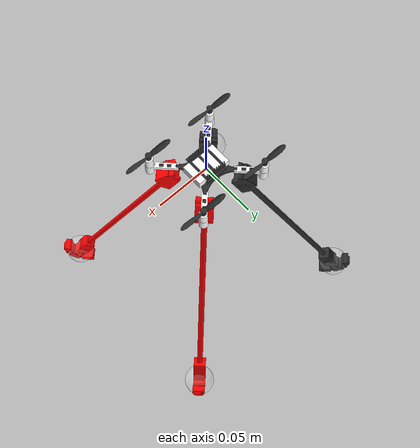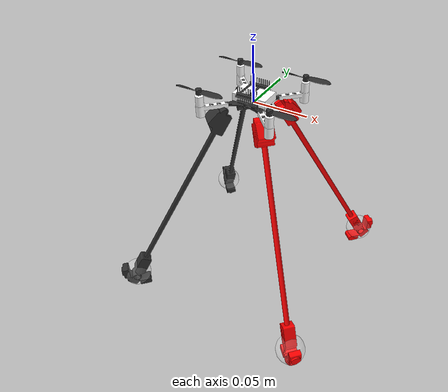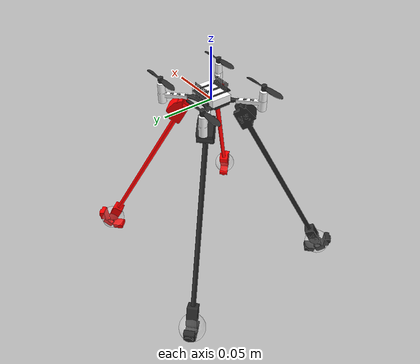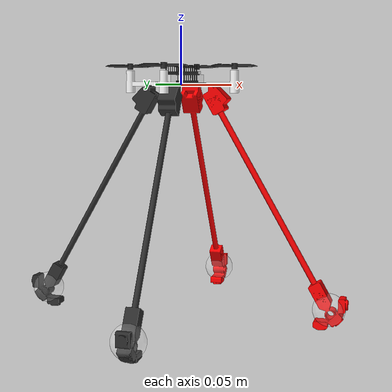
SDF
<?xml version='1.0'?>
<sdf version='1.7'>
  <model name='A30_L200'>

    <include>
      <uri>model://SAR_Base</uri>
    </include>

    <link name='Leg_1'>
      <pose>18.5e-3 -18.5e-3 -4.0e-3 0 1.047 -0.785</pose>
      <inertial>
        <mass>2.47E-2</mass>
        <pose>1.35E-1 0 -1.20E-3 0 0 0 </pose>
        <inertia>
          <ixx>1.61E-6</ixx>
          <ixy>0</ixy>
          <ixz>0</ixz>
          <iyy>2.09E-4</iyy>
          <iyz>0</iyz>
          <izz>2.08E-4</izz>
        </inertia>
      </inertial>
      <gravity>1</gravity>
      <self_collide>1</self_collide>
      <visual name='Leg_Visual'>
        <pose>0 0 0 0 0 0</pose>
        <geometry>
          <mesh>
            <uri>model://Leg_Assemblies/meshes/Leg_Assembly_30_deg--200mm.STL</uri>
            <scale>1 1 1</scale>
          </mesh>
        </geometry>
          <material>
              <!--Red-->
              <ambient>1.0 0.0 0.0 1</ambient>
              <diffuse>1.0 0.0 0.0 1</diffuse>
              <specular>0.1 0.1 0.1 1.0</specular>
          <lighting>1</lighting>
          </material>
      </visual>
      <collision name="Leg_Collision_1">
        <pose>104.5e-3 0 -1.9e-3 0 1.57 0</pose>
        <geometry>
          <cylinder>
            <length>109.0e-3</length>
            <radius>2.5e-3</radius>
          </cylinder>
        </geometry>
      </collision>
      <self_collide>1</self_collide>
    </link>
    <link name='Foot_1'>
      <pose>91.6e-3 -91.6e-3 -186.9e-3 0 2.618 -0.785</pose>
      <inertial>
        <mass>0.01E-6</mass>
        <pose>0 0 0 0 0 0 </pose>
      </inertial>
      <gravity>1</gravity>
      <self_collide>1</self_collide>
      <visual name='Collision_Radius_Foot_1'>
        <pose>0 0 0 0 0 0</pose>
        <geometry>
          <sphere>
            <radius>13.9e-3</radius>
          </sphere>
        </geometry>
        <material>
        <ambient>1 1 1 0.2 </ambient>
        <diffuse>1 1 1 0.2</diffuse>
        <lighting>1</lighting>
        </material>
      </visual>

      <collision name="Foot_Collision_1">
        <pose>0 0 0 0 0 0</pose>
        <geometry>
          <sphere>
            <radius>13.9e-3</radius>
          </sphere>
        </geometry>
      </collision>
      <sensor name='contact_sensor' type='contact'>
          <contact>
              <collision>Foot_Collision_1</collision>
              <topic>/SAR_Internal/Leg_Connections_1</topic>
          </contact>
          <always_on>1</always_on>
          <update_rate>100</update_rate>
      </sensor>
      <self_collide>1</self_collide>
    </link>

    <link name='Leg_2'>
      <pose>-18.5e-3 -18.5e-3 -4.0e-3 0 1.047 -2.35</pose>
      <inertial>
        <mass>2.47E-2</mass>
        <pose>1.35E-1 0 -1.20E-3 0 0 0 </pose>
        <inertia>
          <ixx>1.61E-6</ixx>
          <ixy>0</ixy>
          <ixz>0</ixz>
          <iyy>2.09E-4</iyy>
          <iyz>0</iyz>
          <izz>2.08E-4</izz>
        </inertia>
      </inertial>
      <gravity>1</gravity>
      <self_collide>1</self_collide>
      <visual name='Leg_Visual'>
        <pose>0 0 0 0 0 0</pose>
        <geometry>
          <mesh>
            <uri>model://Leg_Assemblies/meshes/Leg_Assembly_30_deg--200mm.STL</uri>
            <scale>1 1 1</scale>
          </mesh>
        </geometry>
          <material>
              <!--DarkGrey-->
              <ambient>0.175 0.175 0.175 1</ambient>
              <diffuse>0.175 0.175 0.175 1</diffuse>
              <specular>0.175 0.175 0.175 1.00</specular>
          <lighting>1</lighting>
          </material>
      </visual>

      <collision name="Leg_Collision_2">
        <pose>104.5e-3 0 -1.9e-3 0 1.57 0</pose>
        <geometry>
          <cylinder>
            <length>109.0e-3</length>
            <radius>2.5e-3</radius>
          </cylinder>
        </geometry>
      </collision>

      <self_collide>1</self_collide>
    </link>
    <link name='Foot_2'>
      <pose>-91.6e-3 -91.6e-3 -186.9e-3 0 2.618 -2.35</pose>
      <inertial>
        <mass>0.01E-6</mass>
        <pose>0 0 0 0 0 0 </pose>
      </inertial>
      <gravity>1</gravity>
      <self_collide>1</self_collide>
      <visual name='Collision_Radius_Foot_2'>
        <pose>0 0 0 0 0 0</pose>
        <geometry>
          <sphere>
            <radius>13.9e-3</radius>
          </sphere>
        </geometry>
        <material>
        <ambient>1 1 1 0.2</ambient>
        <diffuse>1 1 1 0.2</diffuse>
        <lighting>1</lighting>
        </material>
      </visual>

      <collision name="Foot_Collision_2">
        <pose>0 0 0 0 0 0</pose>
        <geometry>
          <sphere>
            <radius>13.9e-3</radius>
          </sphere>
        </geometry>
      </collision>
      <sensor name='contact_sensor' type='contact'>
          <contact>
              <collision>Foot_Collision_2</collision>
              <topic>/SAR_Internal/Leg_Connections_2</topic>
          </contact>
          <always_on>1</always_on>
          <update_rate>100</update_rate>
      </sensor>
      <self_collide>1</self_collide>
    </link>

    <link name='Leg_3'>
      <pose>-18.5e-3 18.5e-3 -4.0e-3 0 1.047 2.35</pose>
      <inertial>
        <mass>2.47E-2</mass>
        <pose>1.35E-1 0 -1.20E-3 0 0 0 </pose>
        <inertia>
          <ixx>1.61E-6</ixx>
          <ixy>0</ixy>
          <ixz>0</ixz>
          <iyy>2.09E-4</iyy>
          <iyz>0</iyz>
          <izz>2.08E-4</izz>
        </inertia>
      </inertial>
      <gravity>1</gravity>
      <self_collide>1</self_collide>
      <visual name='Leg_Visual'>
        <pose>0 0 0 0 0 0</pose>
        <geometry>
          <mesh>
            <uri>model://Leg_Assemblies/meshes/Leg_Assembly_30_deg--200mm.STL</uri>
            <scale>1 1 1</scale>
          </mesh>
        </geometry>
          <material>
              <!--DarkGrey-->
              <ambient>0.175 0.175 0.175 1</ambient>
              <diffuse>0.175 0.175 0.175 1</diffuse>
              <specular>0.175 0.175 0.175 1.00</specular>
          <lighting>1</lighting>
          </material>
      </visual>

      <collision name="Leg_Collision_3">
        <pose>104.5e-3 0 -1.9e-3 0 1.57 0</pose>
        <geometry>
          <cylinder>
            <length>109.0e-3</length>
            <radius>2.5e-3</radius>
          </cylinder>
        </geometry>
      </collision>

      <self_collide>1</self_collide>
    </link>
    <link name='Foot_3'>
      <pose>-91.6e-3 91.6e-3 -186.9e-3 0 2.618 2.35</pose>
      <inertial>
        <mass>0.01E-6</mass>
        <pose>0 0 0 0 0 0 </pose>
      </inertial>
      <gravity>1</gravity>
      <self_collide>1</self_collide>
      <visual name='Collision_Radius_Foot_3'>
        <pose>0 0 0 0 0 0</pose>
        <geometry>
          <sphere>
            <radius>13.9e-3</radius>
          </sphere>
        </geometry>
        <material>
        <ambient>1 1 1 0.2</ambient>
        <diffuse>1 1 1 0.2</diffuse>
        <lighting>1</lighting>
        </material>
      </visual>

      <collision name="Foot_Collision_3">
        <pose>0 0 0 0 0 0</pose>
        <geometry>
          <sphere>
            <radius>13.9e-3</radius>
          </sphere>
        </geometry>
      </collision>
      <sensor name='contact_sensor' type='contact'>
          <contact>
              <collision>Foot_Collision_3</collision>
              <topic>/SAR_Internal/Leg_Connections_3</topic>
          </contact>
          <always_on>1</always_on>
          <update_rate>100</update_rate>
      </sensor>
      <self_collide>1</self_collide>
    </link>

    <link name='Leg_4'>
      <pose>18.5e-3 18.5e-3 -4.0e-3 0 1.047 0.785</pose>
      <inertial>
        <mass>2.47E-2</mass>
        <pose>1.35E-1 0 -1.20E-3 0 0 0 </pose>
        <inertia>
          <ixx>1.61E-6</ixx>
          <ixy>0</ixy>
          <ixz>0</ixz>
          <iyy>2.09E-4</iyy>
          <iyz>0</iyz>
          <izz>2.08E-4</izz>
        </inertia>
      </inertial>
      <gravity>1</gravity>
      <self_collide>1</self_collide>
      <visual name='Leg_Visual'>
        <pose>0 0 0 0 0 0</pose>
        <geometry>
          <mesh>
            <uri>model://Leg_Assemblies/meshes/Leg_Assembly_30_deg--200mm.STL</uri>
            <scale>1 1 1</scale>
          </mesh>
        </geometry>
          <material>
              <!--Red-->
              <ambient>1.0 0.0 0.0 1</ambient>
              <diffuse>1.0 0.0 0.0 1</diffuse>
              <specular>0.1 0.1 0.1 1.0</specular>
          <lighting>1</lighting>
          </material>
      </visual>

      <collision name="Leg_Collision_4">
        <pose>104.5e-3 0 -1.9e-3 0 1.57 0</pose>
        <geometry>
          <cylinder>
            <length>109.0e-3</length>
            <radius>2.5e-3</radius>
          </cylinder>
        </geometry>
      </collision>

      <self_collide>1</self_collide>
    </link>
    <link name='Foot_4'>
      <pose>91.6e-3 91.6e-3 -186.9e-3 0 2.618 0.785</pose>
      <inertial>
        <mass>0.01E-6</mass>
        <pose>0 0 0 0 0 0 </pose>
      </inertial>
      <gravity>1</gravity>
      <self_collide>1</self_collide>
      <visual name='Collision_Radius_Foot_4'>
        <pose>0 0 0 0 0 0</pose>
        <geometry>
          <sphere>
            <radius>13.9e-3</radius>
          </sphere>
        </geometry>
        <material>
        <ambient>1 1 1 0.2</ambient>
        <diffuse>1 1 1 0.2</diffuse>
        <lighting>1</lighting>
        </material>
      </visual>

      <collision name="Foot_Collision_4">
        <pose>0 0 0 0 0 0</pose>
        <geometry>
          <sphere>
            <radius>13.9e-3</radius>
          </sphere>
        </geometry>
      </collision>
      <sensor name='contact_sensor' type='contact'>
          <contact>
              <collision>Foot_Collision_4</collision>
              <topic>/SAR_Internal/Leg_Connections_4</topic>
          </contact>
          <always_on>1</always_on>
          <update_rate>100</update_rate>
      </sensor>
      <self_collide>1</self_collide>
    </link>

    <joint name='Hinge_1_Joint' type='universal'>
      <parent>SAR_Base::SAR_Body</parent>
      <child>Leg_1</child>
      <pose>0 0 0 0 0.5236 0</pose>
      <axis>
        <xyz>0 1 0</xyz>
        <limit>
          <lower>0.0</lower>
          <upper>1.309</upper>
        </limit>
        <dynamics>
          <spring_stiffness>5.0</spring_stiffness>
          <damping>0.3</damping>
        </dynamics>
      </axis>
      <axis2>
        <xyz>0 0 1</xyz>
        <limit>
          <lower>-0.349</lower>
          <upper>0.349</upper>
        </limit>
        <dynamics>
          <spring_stiffness>5.0</spring_stiffness>
          <damping>0.7</damping>
        </dynamics>
      </axis2>
    </joint>

    <joint name='Ball_1_Joint' type='ball'>
      <parent>Leg_1</parent>
      <child>Foot_1</child>
      <pose>0 0 0 0 0 0</pose>
    </joint>

    <joint name='Hinge_2_Joint' type='universal'>
      <parent>SAR_Base::SAR_Body</parent>
      <child>Leg_2</child>
      <pose>0 0 0 0 0.5236 0</pose>
      <axis>
        <xyz>0 1 0</xyz>
        <limit>
          <lower>0.0</lower>
          <upper>1.309</upper>
        </limit>
        <dynamics>
          <spring_stiffness>5.0</spring_stiffness>
          <damping>0.3</damping>
        </dynamics>
      </axis>
      <axis2>
        <xyz>0 0 1</xyz>
        <limit>
          <lower>-0.349</lower>
          <upper>0.349</upper>
        </limit>
        <dynamics>
          <spring_stiffness>5.0</spring_stiffness>
          <damping>0.7</damping>
        </dynamics>
      </axis2>
    </joint>
    <joint name='Ball_2_Joint' type='ball'>
      <parent>Leg_2</parent>
      <child>Foot_2</child>
      <pose>0 0 0 0 0 0</pose>
    </joint>

    <joint name='Hinge_3_Joint' type='universal'>
      <parent>SAR_Base::SAR_Body</parent>
      <child>Leg_3</child>
      <pose>0 0 0 0 0.5236 0</pose>
      <axis>
        <xyz>0 1 0</xyz>
        <limit>
          <lower>0.0</lower>
          <upper>1.309</upper>
        </limit>
        <dynamics>
          <spring_stiffness>5.0</spring_stiffness>
          <damping>0.3</damping>
        </dynamics>
      </axis>
      <axis2>
        <xyz>0 0 1</xyz>
        <limit>
          <lower>-0.349</lower>
          <upper>0.349</upper>
        </limit>
        <dynamics>
          <spring_stiffness>5.0</spring_stiffness>
          <damping>0.7</damping>
        </dynamics>
      </axis2>
    </joint>
    <joint name='Ball_3_Joint' type='ball'>
      <parent>Leg_3</parent>
      <child>Foot_3</child>
      <pose>0 0 0 0 0 0</pose>
    </joint>

    <joint name='Hinge_4_Joint' type='universal'>
      <parent>SAR_Base::SAR_Body</parent>
      <child>Leg_4</child>
      <pose>0 0 0 0 0.5236 0</pose>
      <axis>
        <xyz>0 1 0</xyz>
        <limit>
          <lower>0.0</lower>
          <upper>1.309</upper>
        </limit>
        <dynamics>
          <spring_stiffness>5.0</spring_stiffness>
          <damping>0.3</damping>
        </dynamics>
      </axis>
      <axis2>
        <xyz>0 0 1</xyz>
        <limit>
          <lower>-0.349</lower>
          <upper>0.349</upper>
        </limit>
        <dynamics>
          <spring_stiffness>5.0</spring_stiffness>
          <damping>0.7</damping>
        </dynamics>
      </axis2>
    </joint>

    <joint name='Ball_4_Joint' type='ball'>
      <parent>Leg_4</parent>
      <child>Foot_4</child>
      <pose>0 0 0 0 0 0</pose>
    </joint>

    <plugin
        filename="/home/dlee/ros2_ws/install/sar_gazebo/lib/libSticky_Leg_Plugin.so"
        name="gz::sim::systems::Sticky_Leg_Plugin">
      <LegNumber>1</LegNumber>
      <LinkName>Foot_1</LinkName>
      <CollisionName>Foot_Collision_1</CollisionName>
      <JointName>Foot_1_Contact_Joint</JointName>

      <child_model>A30_L200</child_model>
      <child_link>Foot_1</child_link>
    </plugin>

    <plugin
        filename="/home/dlee/ros2_ws/install/sar_gazebo/lib/libSticky_Leg_Plugin.so"
        name="gz::sim::systems::Sticky_Leg_Plugin">
      <LegNumber>2</LegNumber>
      <LinkName>Foot_2</LinkName>
      <CollisionName>Foot_Collision_2</CollisionName>
      <JointName>Leg_2_Contact_Joint</JointName>

      <child_model>A30_L200</child_model>
      <child_link>Foot_2</child_link>
    </plugin>

    <plugin
        filename="/home/dlee/ros2_ws/install/sar_gazebo/lib/libSticky_Leg_Plugin.so"
        name="gz::sim::systems::Sticky_Leg_Plugin">
      <LegNumber>3</LegNumber>
      <LinkName>Foot_3</LinkName>
      <CollisionName>Foot_Collision_3</CollisionName>
      <JointName>Leg_3_Contact_Joint</JointName>

      <child_model>A30_L200</child_model>
      <child_link>Foot_3</child_link>
    </plugin>
    <plugin
        filename="/home/dlee/ros2_ws/install/sar_gazebo/lib/libSticky_Leg_Plugin.so"
        name="gz::sim::systems::Sticky_Leg_Plugin">
      <LegNumber>4</LegNumber>
      <LinkName>Foot_4</LinkName>
      <CollisionName>Foot_Collision_4</CollisionName>
      <JointName>Leg_4_Contact_Joint</JointName>

      <child_model>A30_L200</child_model>
      <child_link>Foot_4</child_link>
    </plugin>

    <static>0</static>
    <allow_auto_disable>1</allow_auto_disable>
  </model>
</sdf>

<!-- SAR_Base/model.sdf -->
<sdf version='1.7'>
  <model name='SAR_Base' canonical_link='SAR_Body'>
    <pose>0 0 0 0 0 0</pose>   <!--the pose is relative to the world by default-->

    <!--SAR_Body-->
    <link name='SAR_Body'>
        <pose>0 0 0 0 0 0</pose>
        <inertial> <!--inertial properties of the link mass, inertia matix-->
            <mass>37.0e-3</mass>
            <inertia>
                <ixx>17.20e-6</ixx>
                <ixy>0</ixy>
                <ixz>0</ixz>
                <iyy>17.70e-6</iyy>
                <iyz>0</iyz>
                <izz>34.20e-6</izz>
            </inertia>
            <pose>0 0 0 0 0 0</pose>
        </inertial>
        <pose>0 0 0 0 0 0</pose>
        <gravity>1</gravity>
        <self_collide>0</self_collide>
        <kinematic>0</kinematic>
        <enable_wind>0</enable_wind>

        <sensor name="imu" type="imu">
        <always_on>1</always_on>
        <update_rate>100</update_rate>
        <visualize>true</visualize>
        <topic>imu</topic>
        <enable_metrics>true</enable_metrics>
        </sensor>

        <visual name='Crazyflie_Base_Assembly'>
            <pose>0 0 0 0 0 0</pose>
            <geometry>
            <mesh>
                <uri>model://SAR_Base/meshes/Crazyflie_Base_Body.STL</uri>
                <scale>1 1 1</scale>
            </mesh>
            </geometry>
            <material>
                <!--DarkGrey-->
                <ambient>0.175 0.175 0.175 1</ambient>
                <diffuse>0.175 0.175 0.175 1</diffuse>
                <specular>0.175 0.175 0.175 1.00</specular>
            <lighting>1</lighting>
            </material>
        </visual>

        <visual name='Crazyflie_Motor_Arms'>
            <pose>0 0 0 0 0 0</pose>
            <geometry>
            <mesh>
                <uri>model://SAR_Base/meshes/Crazyflie_Motor_Arms.STL</uri>
                <scale>1 1 1</scale>
            </mesh>
            </geometry>
            <material>
                <!--White-->
                <ambient>1 1 1 1</ambient>
                <diffuse>1 1 1 1</diffuse>
                <specular>0.1 0.1 0.1 0.128</specular>
            <lighting>1</lighting>
            </material>
        </visual>

        <collision name='Body_Collision_Prop_1'>
            <pose>33.0e-3 -33.0e-3 9.25e-3 0 0 0</pose>
            <geometry>
            <cylinder>
                <length>18.5e-3</length>
                <radius>23.0e-3</radius>
            </cylinder>
            </geometry>
        </collision>

        <collision name='Body_Collision_Prop_2'>
            <pose>-33.0e-3 -33.0e-3 9.25e-3 0 0 0</pose>
            <geometry>
            <cylinder>
                <length>18.5e-3</length>
                <radius>23.0e-3</radius>
            </cylinder>
            </geometry>
        </collision>

        <collision name='Body_Collision_Prop_3'>
            <pose>-33.0e-3 33.0e-3 9.25e-3 0 0 0</pose>
            <geometry>
            <cylinder>
                <length>18.5e-3</length>
                <radius>23.0e-3</radius>
            </cylinder>
            </geometry>
        </collision>

        <collision name='Body_Collision_Prop_4'>
            <pose>33.0e-3 33.0e-3 9.25e-3 0 0 0</pose>
            <geometry>
            <cylinder>
                <length>18.5e-3</length>
                <radius>23.0e-3</radius>
            </cylinder>
            </geometry>
        </collision>

    </link>

    <link name='Prop_1'>
        <inertial>
            <mass>1e-6</mass>
            <inertia>
                <ixx>1e-6</ixx>
                <ixy>0</ixy>
                <ixz>0</ixz>
                <iyy>1e-6</iyy>
                <iyz>0</iyz>
                <izz>1e-6</izz>
            </inertia>
            <pose>0 0 0 0 0 0</pose>
        </inertial>
        <pose>33.0e-3 -33.0e-3 16.0e-3 0 0 0</pose>
        <gravity>1</gravity>
        <self_collide>0</self_collide>
        <visual name='Crazyflie_Propeller_1'>
            <pose>0 0 0 0 0 0</pose>
            <geometry>
                <mesh>
                    <uri>model://SAR_Base/meshes/Crazyflie_Propeller.STL</uri>
                    <scale>1 1 1</scale>
                </mesh>
            </geometry>
            <material>
                <!--DarkGrey-->
                <ambient>0.175 0.175 0.175 1</ambient>
                <diffuse>0.175 0.175 0.175 1</diffuse>
                <specular>0.175 0.175 0.175 1.00</specular>
            <lighting>1</lighting>
            </material>
        </visual>
    </link>

    <link name='Prop_2'>
        <inertial>
            <mass>1e-6</mass>
            <inertia>
                <ixx>1e-6</ixx>
                <ixy>0</ixy>
                <ixz>0</ixz>
                <iyy>1e-6</iyy>
                <iyz>0</iyz>
                <izz>1e-6</izz>
            </inertia>
            <pose>0 0 0 0 0 0</pose>
        </inertial>
        <pose>-33.0e-3 -33.0e-3 16.0e-3 0 0 0</pose>
        <gravity>1</gravity>
        <self_collide>0</self_collide>
        <visual name='Crazyflie_Propeller_2'>
            <pose>0 0 0 0 0 0</pose>
            <geometry>
                <mesh>
                    <uri>model://SAR_Base/meshes/Crazyflie_Propeller.STL</uri>
                    <scale>1 1 1</scale>
                </mesh>
            </geometry>
            <material>
                <!--DarkGrey-->
                <ambient>0.175 0.175 0.175 1</ambient>
                <diffuse>0.175 0.175 0.175 1</diffuse>
                <specular>0.175 0.175 0.175 1.00</specular>
            <lighting>1</lighting>
            </material>
        </visual>
    </link>

    <link name='Prop_3'>
    <inertial>
        <mass>1e-6</mass>
        <inertia>
            <ixx>1e-6</ixx>
            <ixy>0</ixy>
            <ixz>0</ixz>
            <iyy>1e-6</iyy>
            <iyz>0</iyz>
            <izz>1e-6</izz>
        </inertia>
        <pose>0 0 0 0 0 0</pose>
    </inertial>
    <pose>-33.0e-3 33.0e-3 16.0e-3 0 0 0</pose>
    <gravity>1</gravity>
    <self_collide>0</self_collide>
        <visual name='Crazyflie_Propeller_3'>
            <pose>0 0 0 0 0 0</pose>
            <geometry>
            <mesh>
                <uri>model://SAR_Base/meshes/Crazyflie_Propeller.STL</uri>
                <scale>1 1 1</scale>
            </mesh>
            </geometry>
                <material>
                    <!--DarkGrey-->
                    <ambient>0.175 0.175 0.175 1</ambient>
                    <diffuse>0.175 0.175 0.175 1</diffuse>
                    <specular>0.175 0.175 0.175 1.00</specular>
                <lighting>1</lighting>
                </material>
        </visual>
    </link>

    <link name='Prop_4'>
    <inertial>
        <mass>1e-6</mass>
        <inertia>
            <ixx>1e-6</ixx>
            <ixy>0</ixy>
            <ixz>0</ixz>
            <iyy>1e-6</iyy>
            <iyz>0</iyz>
            <izz>1e-6</izz>
        </inertia>
        <pose>0 0 0 0 0 0</pose>
    </inertial>
    <pose>33.0e-3 33.0e-3 16.0e-3 0 0 0</pose>
    <gravity>1</gravity>
    <self_collide>0</self_collide>
        <visual name='Crazyflie_Propeller_4'>
            <pose>0 0 0 0 0 0</pose>
            <geometry>
                <mesh>
                    <uri>model://SAR_Base/meshes/Crazyflie_Propeller.STL</uri>
                    <scale>1 1 1</scale>
                </mesh>
            </geometry>
                <material>
                    <!--DarkGrey-->
                    <ambient>0.175 0.175 0.175 1</ambient>
                    <diffuse>0.175 0.175 0.175 1</diffuse>
                    <specular>0.175 0.175 0.175 1.00</specular>
                <lighting>1</lighting>
                </material>
        </visual>
    </link>

    <joint name='Prop_1_Joint' type='revolute'>
        <pose relative_to='Prop_1'/>
        <parent>SAR_Body</parent>
        <child>Prop_1</child>
        <axis>
            <xyz expressed_in='__model__'>0 0 1</xyz>
            <limit>
                <lower>-1.79769e+308</lower> <!--negative infinity-->
                <upper>1.79769e+308</upper> <!--positive infinity-->
                <effort>-1</effort>
                <velocity>-1</velocity>
            </limit>
            <dynamics>
                <spring_reference>0</spring_reference>
                <spring_stiffness>0</spring_stiffness>
            </dynamics>
        </axis>
    </joint>

    <joint name='Prop_2_Joint' type='revolute'>
        <pose relative_to='Prop_2'/>
        <parent>SAR_Body</parent>
        <child>Prop_2</child>
        <axis>
            <xyz expressed_in='__model__'>0 0 1</xyz>
            <limit>
                <lower>-1.79769e+308</lower>
                <upper>1.79769e+308</upper>
                <effort>-1</effort>
                <velocity>-1</velocity>
            </limit>
            <dynamics>
                <spring_reference>0</spring_reference>
                <spring_stiffness>0</spring_stiffness>
            </dynamics>
        </axis>
    </joint>

    <joint name='Prop_3_Joint' type='revolute'>
        <pose relative_to='Prop_3'/>
        <parent>SAR_Body</parent>
        <child>Prop_3</child>
        <axis>
            <xyz expressed_in='__model__'>0 0 1</xyz>
            <limit>
                <lower>-1.79769e+308</lower>
                <upper>1.79769e+308</upper>
                <effort>-1</effort>
                <velocity>-1</velocity>
            </limit>
            <dynamics>
                <spring_reference>0</spring_reference>
                <spring_stiffness>0</spring_stiffness>
            </dynamics>
        </axis>
    </joint>

    <joint name='Prop_4_Joint' type='revolute'>
        <pose relative_to='Prop_4'/>
        <parent>SAR_Body</parent>t
        <child>Prop_4</child>
        <axis>
            <xyz expressed_in='__model__'>0 0 1</xyz>
            <limit>
                <lower>-1.79769e+308</lower>
                <upper>1.79769e+308</upper>
                <effort>-1</effort>
                <velocity>-1</velocity>
            </limit>
            <dynamics>
                <spring_reference>0</spring_reference>
                <spring_stiffness>0</spring_stiffness>
            </dynamics>
        </axis>
    </joint>

    <plugin
        filename="/home/dlee/ros2_ws/install/sar_gazebo/lib/libImu_Plugin.so"
        name="gz::sim::systems::Imu_Plugin">
    </plugin>

    <plugin
        filename="/home/dlee/ros2_ws/install/sar_gazebo/lib/libVicon_Plugin.so"
        name="gz::sim::systems::Vicon_Plugin">
        <link_name>SAR_Body</link_name>
    </plugin>
    <plugin
        filename="/home/dlee/ros2_ws/install/sar_gazebo/lib/libMotor_Plugin.so"
        name="gz::sim::systems::Motor_Plugin">
        <Motor_Number>1</Motor_Number>
        <joint_name>Prop_1_Joint</joint_name>
        <link_name>Prop_1</link_name>
        <canonicallink_name>SAR_Body</canonicallink_name>
        <Turning_Direction>ccw</Turning_Direction>
        <Visual_Slowdown>200</Visual_Slowdown>
    </plugin>

    <plugin
        filename="/home/dlee/ros2_ws/install/sar_gazebo/lib/libMotor_Plugin.so"
        name="gz::sim::systems::Motor_Plugin">
        <Motor_Number>2</Motor_Number>
        <joint_name>Prop_2_Joint</joint_name>
        <link_name>Prop_2</link_name>
        <canonicallink_name>SAR_Body</canonicallink_name>
        <Turning_Direction>cw</Turning_Direction>
        <Visual_Slowdown>200</Visual_Slowdown>
    </plugin>

    <plugin
        filename="/home/dlee/ros2_ws/install/sar_gazebo/lib/libMotor_Plugin.so"
        name="gz::sim::systems::Motor_Plugin">
        <Motor_Number>3</Motor_Number>
        <joint_name>Prop_3_Joint</joint_name>
        <link_name>Prop_3</link_name>
        <canonicallink_name>SAR_Body</canonicallink_name>
        <Turning_Direction>ccw</Turning_Direction>
        <Visual_Slowdown>200</Visual_Slowdown>
    </plugin>

    <plugin
        filename="/home/dlee/ros2_ws/install/sar_gazebo/lib/libMotor_Plugin.so"
        name="gz::sim::systems::Motor_Plugin">
        <Motor_Number>4</Motor_Number>
        <joint_name>Prop_4_Joint</joint_name>
        <link_name>Prop_4</link_name>
        <canonicallink_name>SAR_Body</canonicallink_name>
        <Turning_Direction>cw</Turning_Direction>
        <Visual_Slowdown>200</Visual_Slowdown>
    </plugin>

    <static>0</static>
    <allow_auto_disable>1</allow_auto_disable>
  </model>
</sdf>
